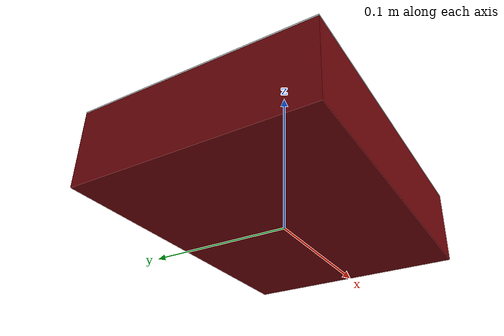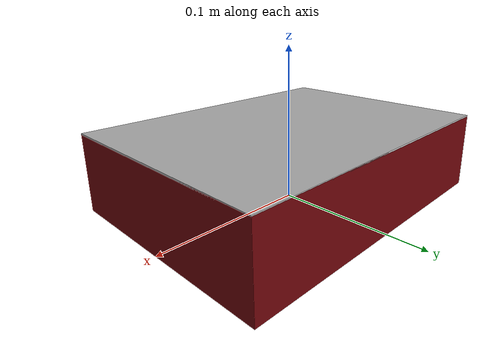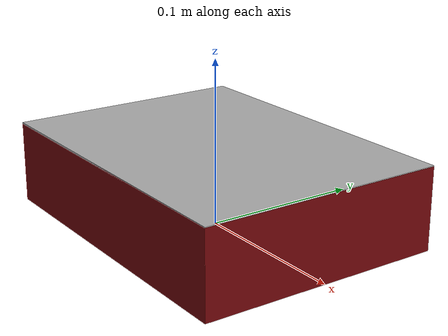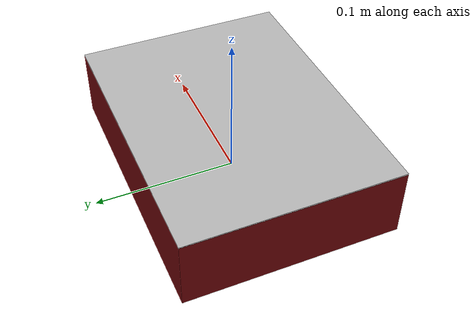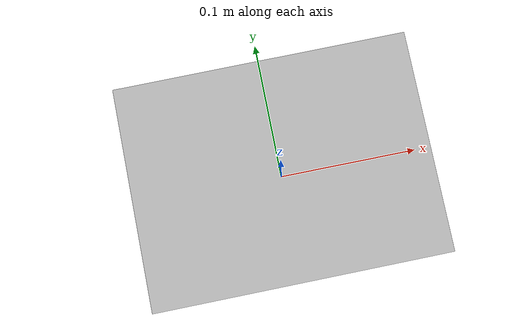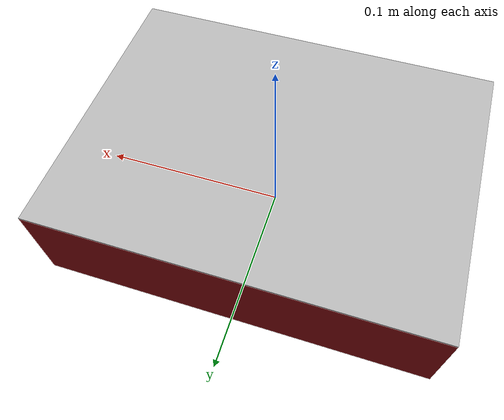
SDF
<?xml version='1.0'?>
<sdf version='1.6'>
  <model name='biscuit_box'>
    <link name='link'>
  <pose frame=''>0 0 0.025 0 -0 0</pose>
      <visual name='visual'>
        <geometry>
          <box>
            <size>0.2 0.15 0.05</size>
          </box>
        </geometry>
             <material>
     	<ambient>0.423 0.019 0.035 1</ambient>
          <diffuse>0.423 0.019 0.035 1</diffuse>
          <specular>0.01 0.01 0.01 1</specular>
          <emissive>0 0 0 1</emissive>
        </material>

        <cast_shadows>1</cast_shadows>
        <transparency>0</transparency>
      </visual>
      <collision name='collision'>
        <laser_retro>0</laser_retro>
        <max_contacts>10</max_contacts>
        <pose frame=''>0 0 0 0 -0 0</pose>
        <geometry>
          <box>
            <size>0.1 0.1 0.15</size>
          </box>
        </geometry>
       </collision>
    </link>
  <link name='link_1'>
  <pose frame=''>0 0 0.050 0 -0 0</pose>
      <visual name='visual'>
        <geometry>
          <box>
            <size>0.2 0.15 0.001</size>
          </box>
        </geometry>
             <material>
          <script>
            <uri>model://biscuit_box/materials/scripts</uri>
            <uri>model://biscuit_box/materials/textures</uri>
            <name>biscuit_pat</name>
          </script>
        </material>

        <cast_shadows>1</cast_shadows>
        <transparency>0</transparency>
      </visual>
      <collision name='collision'>
        <laser_retro>0</laser_retro>
        <max_contacts>10</max_contacts>
        <pose frame=''>0 0 0 0 -0 0</pose>
        <geometry>
          <box>
            <size>0.1 0.1 0.15</size>
          </box>
        </geometry>
       </collision>
    </link>
    <static>1</static>
    <allow_auto_disable>1</allow_auto_disable>
  </model>
</sdf>
